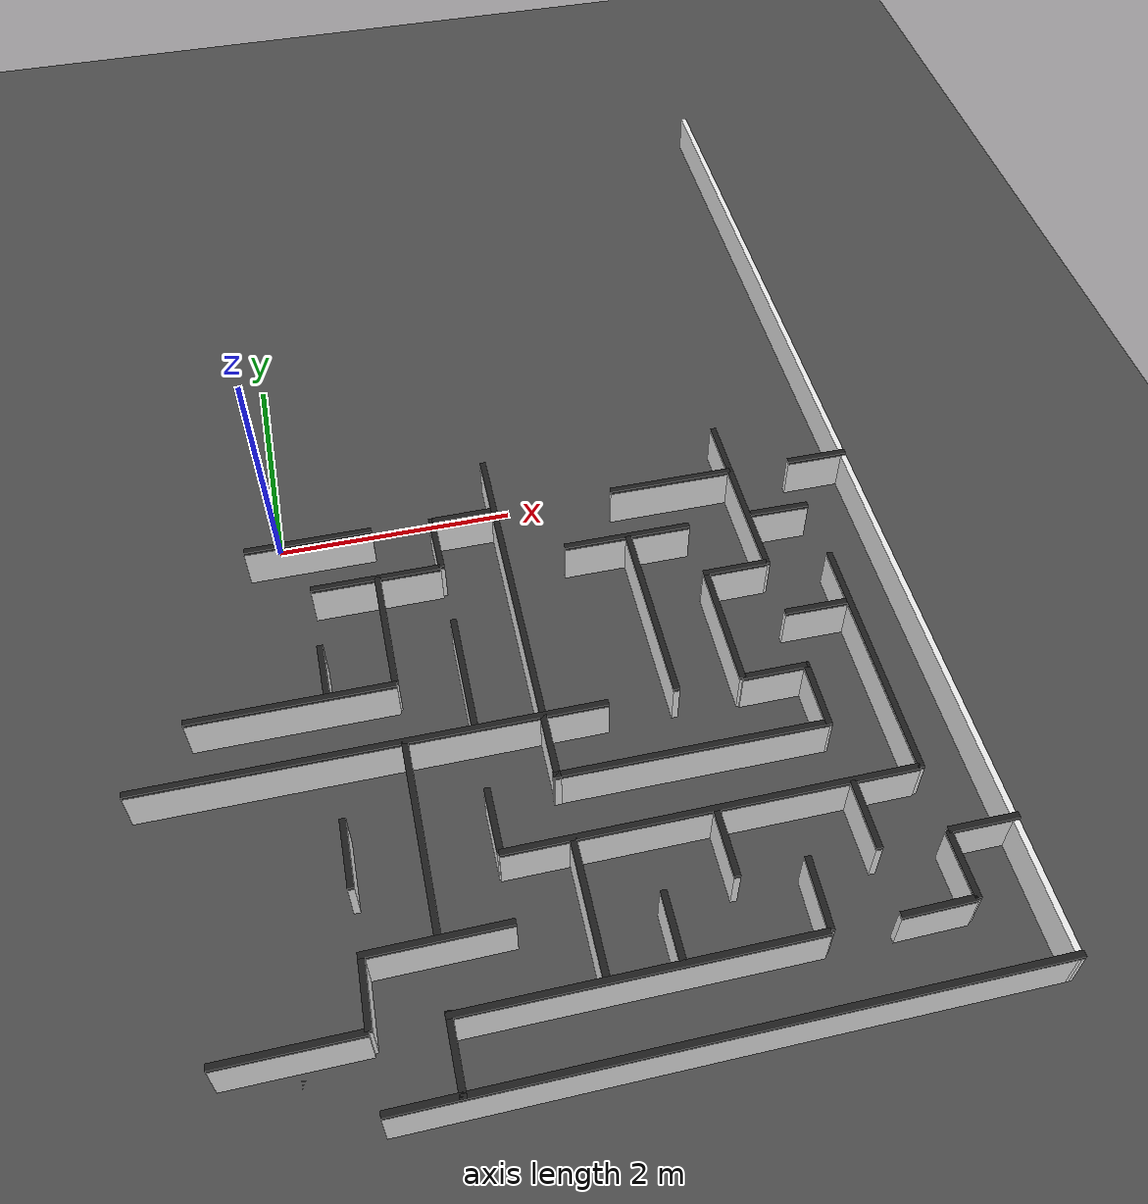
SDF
<sdf version="1.6">
 <world name="default">
  <model name="ground_plane">
   <static>1</static>
   <link name="link">
    <collision name="collision">
     <geometry><plane><normal>0 0 1</normal><size>100 100</size></plane></geometry>
     <surface><friction><ode><mu>100</mu><mu2>50</mu2></ode></friction></surface>
    </collision>
    <visual name="visual">
     <cast_shadows>0</cast_shadows>
     <geometry><plane><normal>0 0 1</normal><size>100 100</size></plane></geometry>
     <material>
      <script><uri>file://media/materials/scripts/gazebo.material</uri><name>Gazebo/Grey</name></script>
     </material>
    </visual>
   </link>
  </model>
  <model name="asphalt_white_plane">
   <static>1</static>
   <link name="link">
    <collision name="collision"><geometry><box><size>60 60 0.005</size></box></geometry></collision>
    <visual name="visual">
     <cast_shadows>0</cast_shadows>
     <geometry><box><size>60 60 0.005</size></box></geometry>
     <material>
      <script>
       <uri>model://asphalt_white_plane/materials/scripts</uri>
       <uri>model://asphalt_white_plane/materials/textures</uri>
       <name>vrc/asphalt_white</name>
      </script>
     </material>
    </visual>
   </link>
  </model>
  <model name="asphalt_red_plane">
   <static>1</static>
   <link name="link">
    <collision name="collision"><geometry><box><size>0.5 0.5 0.005</size></box></geometry></collision>
    <visual name="visual">
     <cast_shadows>0</cast_shadows>
     <geometry><box><size>0.5 0.5 0.005</size></box></geometry>
     <material>
      <script>
       <uri>model://asphalt_red_plane/materials/scripts</uri>
       <uri>model://asphalt_red_plane/materials/textures</uri>
       <name>vrc/asphalt_red</name>
      </script>
     </material>
    </visual>
   </link>
   <pose>0.020542 -4.76391 0 0 -0 0</pose>
  </model>
  <model name="ibomaze">
   <link name="Wall_100">
    <collision name="Wall_100_Collision">
     <geometry><box><size>1.55502 0.05 0.37</size></box></geometry>
     <pose>0 0 0.185 0 -0 0</pose>
    </collision>
    <visual name="Wall_100_Visual">
     <pose>0 0 0.185 0 -0 0</pose>
     <geometry><box><size>1.55502 0.05 0.37</size></box></geometry>
     <material>
      <script><uri>file://media/materials/scripts/gazebo.material</uri><name>Gazebo/White</name></script>
      <ambient>1 1 1 1</ambient>
     </material>
    </visual>
    <pose>0.79411 -3.12637 0 0 0 -1.56548</pose>
   </link>
   <link name="Wall_102">
    <collision name="Wall_102_Collision">
     <geometry><box><size>3.642 0.05 0.37</size></box></geometry>
     <pose>0 0 0.185 0 -0 0</pose>
    </collision>
    <visual name="Wall_102_Visual">
     <pose>0 0 0.185 0 -0 0</pose>
     <geometry><box><size>3.642 0.05 0.37</size></box></geometry>
     <material>
      <script><uri>file://media/materials/scripts/gazebo.material</uri><name>Gazebo/White</name></script>
      <ambient>1 1 1 1</ambient>
     </material>
    </visual>
    <pose>0.535666 -2.35016 0 0 -0 0</pose>
   </link>
   <link name="Wall_5">
    <collision name="Wall_5_Collision">
     <geometry><box><size>4.74 0.05 0.37</size></box></geometry>
     <pose>0 0 0.185 0 -0 0</pose>
    </collision>
    <visual name="Wall_5_Visual">
     <pose>0 0 0.185 0 -0 0</pose>
     <geometry><box><size>4.74 0.05 0.37</size></box></geometry>
     <material>
      <script><uri>file://media/materials/scripts/gazebo.material</uri><name>Gazebo/White</name></script>
      <ambient>1 1 1 1</ambient>
     </material>
    </visual>
    <pose>2.64358 -4.98246 0 0 -0 0</pose>
   </link>
   <link name="Wall_63">
    <collision name="Wall_63_Collision">
     <geometry><box><size>0.548182 0.05 0.37</size></box></geometry>
     <pose>0 0 0.185 0 -0 0</pose>
    </collision>
    <visual name="Wall_63_Visual">
     <pose>0 0 0.185 0 -0 0</pose>
     <geometry><box><size>0.548182 0.05 0.37</size></box></geometry>
     <material>
      <script><uri>file://media/materials/scripts/gazebo.material</uri><name>Gazebo/White</name></script>
      <ambient>1 1 1 1</ambient>
     </material>
    </visual>
    <pose>0.265989 -3.16255 0 0 0 -1.57317</pose>
   </link>
   <link name="Wall_67">
    <collision name="Wall_67_Collision">
     <geometry><box><size>1.044 0.05 0.37</size></box></geometry>
     <pose>0 0 0.185 0 -0 0</pose>
    </collision>
    <visual name="Wall_67_Visual">
     <pose>0 0 0.185 0 -0 0</pose>
     <geometry><box><size>1.044 0.05 0.37</size></box></geometry>
     <material>
      <script><uri>file://media/materials/scripts/gazebo.material</uri><name>Gazebo/White</name></script>
      <ambient>1 1 1 1</ambient>
     </material>
    </visual>
    <pose>-0.255505 -4.45141 0 0 -0 0</pose>
   </link>
   <link name="Wall_69">
    <collision name="Wall_69_Collision">
     <geometry><box><size>0.542044 0.05 0.37</size></box></geometry>
     <pose>0 0 0.185 0 -0 0</pose>
    </collision>
    <visual name="Wall_69_Visual">
     <pose>0 0 0.185 0 -0 0</pose>
     <geometry><box><size>0.542044 0.05 0.37</size></box></geometry>
     <material>
      <script><uri>file://media/materials/scripts/gazebo.material</uri><name>Gazebo/White</name></script>
      <ambient>1 1 1 1</ambient>
     </material>
    </visual>
    <pose>0.271551 -4.18049 0 0 0 -1.59101</pose>
   </link>
   <link name="Wall_7">
    <collision name="Wall_7_Collision">
     <geometry><box><size>10.0256 0.05 0.37</size></box></geometry>
     <pose>0 0 0.185 0 -0 0</pose>
    </collision>
    <visual name="Wall_7_Visual">
     <pose>0 0 0.185 0 -0 0</pose>
     <geometry><box><size>10.0256 0.05 0.37</size></box></geometry>
     <material>
      <script><uri>file://media/materials/scripts/gazebo.material</uri><name>Gazebo/White</name></script>
      <ambient>1 1 1 1</ambient>
     </material>
    </visual>
    <pose>4.98072 0.005333 0 0 -0 1.57237</pose>
   </link>
   <link name="Wall_71">
    <collision name="Wall_71_Collision">
     <geometry><box><size>1.08401 0.05 0.37</size></box></geometry>
     <pose>0 0 0.185 0 -0 0</pose>
    </collision>
    <visual name="Wall_71_Visual">
     <pose>0 0 0.185 0 -0 0</pose>
     <geometry><box><size>1.08401 0.05 0.37</size></box></geometry>
     <material>
      <script><uri>file://media/materials/scripts/gazebo.material</uri><name>Gazebo/White</name></script>
      <ambient>1 1 1 1</ambient>
     </material>
    </visual>
    <pose>0.793523 -3.92705 0 0 -0 0.004836</pose>
   </link>
   <link name="Wall_73">
    <collision name="Wall_73_Collision">
     <geometry><box><size>0.578838 0.05 0.37</size></box></geometry>
     <pose>0 0 0.185 0 -0 0</pose>
    </collision>
    <visual name="Wall_73_Visual">
     <pose>0 0 0.185 0 -0 0</pose>
     <geometry><box><size>0.578838 0.05 0.37</size></box></geometry>
     <material>
      <script><uri>file://media/materials/scripts/gazebo.material</uri><name>Gazebo/White</name></script>
      <ambient>1 1 1 1</ambient>
     </material>
    </visual>
    <pose>0.79086 -4.71706 0 0 -0 1.58154</pose>
   </link>
   <link name="Wall_737">
    <collision name="Wall_737_Collision">
     <geometry><box><size>1.078 0.05 0.37</size></box></geometry>
     <pose>0 0 0.185 0 -0 0</pose>
    </collision>
    <visual name="Wall_737_Visual">
     <pose>0 0 0.185 0 -0 0</pose>
     <geometry><box><size>1.078 0.05 0.37</size></box></geometry>
     <material>
      <script><uri>file://media/materials/scripts/gazebo.material</uri><name>Gazebo/White</name></script>
      <ambient>1 1 1 1</ambient>
     </material>
    </visual>
    <pose>2.8877 -0.779461 0 0 -0 0</pose>
   </link>
   <link name="Wall_739">
    <collision name="Wall_739_Collision">
     <geometry><box><size>1.576 0.05 0.37</size></box></geometry>
     <pose>0 0 0.185 0 -0 0</pose>
    </collision>
    <visual name="Wall_739_Visual">
     <pose>0 0 0.185 0 -0 0</pose>
     <geometry><box><size>1.576 0.05 0.37</size></box></geometry>
     <material>
      <script><uri>file://media/materials/scripts/gazebo.material</uri><name>Gazebo/White</name></script>
      <ambient>1 1 1 1</ambient>
     </material>
    </visual>
    <pose>2.89486 -1.56574 0 0 -0 1.5708</pose>
   </link>
   <link name="Wall_741">
    <collision name="Wall_741_Collision">
     <geometry><box><size>3.20927 0.05 0.37</size></box></geometry>
     <pose>0 0 0.185 0 -0 0</pose>
    </collision>
    <visual name="Wall_741_Visual">
     <pose>0 0 0.185 0 -0 0</pose>
     <geometry><box><size>3.20927 0.05 0.37</size></box></geometry>
     <material>
      <script><uri>file://media/materials/scripts/gazebo.material</uri><name>Gazebo/White</name></script>
      <ambient>1 1 1 1</ambient>
     </material>
    </visual>
    <pose>1.84647 -1.30025 0 0 0 -1.5717</pose>
   </link>
   <link name="Wall_746">
    <collision name="Wall_746_Collision">
     <geometry><box><size>1.01629 0.05 0.37</size></box></geometry>
     <pose>0 0 0.185 0 -0 0</pose>
    </collision>
    <visual name="Wall_746_Visual">
     <pose>0 0 0.185 0 -0 0</pose>
     <geometry><box><size>1.01629 0.05 0.37</size></box></geometry>
     <material>
      <script><uri>file://media/materials/scripts/gazebo.material</uri><name>Gazebo/White</name></script>
      <ambient>1 1 1 1</ambient>
     </material>
    </visual>
    <pose>1.32458 -1.82746 0 0 0 -1.5708</pose>
   </link>
   <link name="Wall_748">
    <collision name="Wall_748_Collision">
     <geometry><box><size>1.625 0.05 0.37</size></box></geometry>
     <pose>0 0 0.185 0 -0 0</pose>
    </collision>
    <visual name="Wall_748_Visual">
     <pose>0 0 0.185 0 -0 0</pose>
     <geometry><box><size>1.625 0.05 0.37</size></box></geometry>
     <material>
      <script><uri>file://media/materials/scripts/gazebo.material</uri><name>Gazebo/White</name></script>
      <ambient>1 1 1 1</ambient>
     </material>
    </visual>
    <pose>-0.011661 -1.82796 0 0 -0 0</pose>
   </link>
   <link name="Wall_75">
    <collision name="Wall_75_Collision">
     <geometry><box><size>2.644 0.05 0.37</size></box></geometry>
     <pose>0 0 0.185 0 -0 0</pose>
    </collision>
    <visual name="Wall_75_Visual">
     <pose>0 0 0.185 0 -0 0</pose>
     <geometry><box><size>2.644 0.05 0.37</size></box></geometry>
     <material>
      <script><uri>file://media/materials/scripts/gazebo.material</uri><name>Gazebo/White</name></script>
      <ambient>1 1 1 1</ambient>
     </material>
    </visual>
    <pose>2.08502 -4.46021 0 0 -0 0</pose>
   </link>
   <link name="Wall_750">
    <collision name="Wall_750_Collision">
     <geometry><box><size>0.479042 0.05 0.37</size></box></geometry>
     <pose>0 0 0.185 0 -0 0</pose>
    </collision>
    <visual name="Wall_750_Visual">
     <pose>0 0 0.185 0 -0 0</pose>
     <geometry><box><size>0.479042 0.05 0.37</size></box></geometry>
     <material>
      <script><uri>file://media/materials/scripts/gazebo.material</uri><name>Gazebo/White</name></script>
      <ambient>1 1 1 1</ambient>
     </material>
    </visual>
    <pose>0.261862 -1.5804 0 0 0 -1.55681</pose>
   </link>
   <link name="Wall_752">
    <collision name="Wall_752_Collision">
     <geometry><box><size>1.06202 0.05 0.37</size></box></geometry>
     <pose>0 0 0.185 0 -0 0</pose>
    </collision>
    <visual name="Wall_752_Visual">
     <pose>0 0 0.185 0 -0 0</pose>
     <geometry><box><size>1.06202 0.05 0.37</size></box></geometry>
     <material>
      <script><uri>file://media/materials/scripts/gazebo.material</uri><name>Gazebo/White</name></script>
      <ambient>1 1 1 1</ambient>
     </material>
    </visual>
    <pose>0.787862 -1.28918 0 0 0 -1.56487</pose>
   </link>
   <link name="Wall_754">
    <collision name="Wall_754_Collision">
     <geometry><box><size>1.06778 0.05 0.37</size></box></geometry>
     <pose>0 0 0.185 0 -0 0</pose>
    </collision>
    <visual name="Wall_754_Visual">
     <pose>0 0 0.185 0 -0 0</pose>
     <geometry><box><size>1.06778 0.05 0.37</size></box></geometry>
     <material>
      <script><uri>file://media/materials/scripts/gazebo.material</uri><name>Gazebo/White</name></script>
      <ambient>1 1 1 1</ambient>
     </material>
    </visual>
    <pose>0.773579 -0.766461 0 0 -0 0</pose>
   </link>
   <link name="Wall_758">
    <collision name="Wall_758_Collision">
     <geometry><box><size>0.530705 0.05 0.37</size></box></geometry>
     <pose>0 0 0.185 0 -0 0</pose>
    </collision>
    <visual name="Wall_758_Visual">
     <pose>0 0 0.185 0 -0 0</pose>
     <geometry><box><size>0.530705 0.05 0.37</size></box></geometry>
     <material>
      <script><uri>file://media/materials/scripts/gazebo.material</uri><name>Gazebo/White</name></script>
      <ambient>1 1 1 1</ambient>
     </material>
    </visual>
    <pose>1.31386 -0.502961 0 0 0 -1.55832</pose>
   </link>
   <link name="Wall_760">
    <collision name="Wall_760_Collision">
     <geometry><box><size>0.542 0.05 0.37</size></box></geometry>
     <pose>0 0 0.185 0 -0 0</pose>
    </collision>
    <visual name="Wall_760_Visual">
     <pose>0 0 0.185 0 -0 0</pose>
     <geometry><box><size>0.542 0.05 0.37</size></box></geometry>
     <material>
      <script><uri>file://media/materials/scripts/gazebo.material</uri><name>Gazebo/White</name></script>
      <ambient>1 1 1 1</ambient>
     </material>
    </visual>
    <pose>1.58609 -0.255677 0 0 -0 3.14159</pose>
   </link>
   <link name="Wall_77">
    <collision name="Wall_77_Collision">
     <geometry><box><size>0.557148 0.05 0.37</size></box></geometry>
     <pose>0 0 0.185 0 -0 0</pose>
    </collision>
    <visual name="Wall_77_Visual">
     <pose>0 0 0.185 0 -0 0</pose>
     <geometry><box><size>0.557148 0.05 0.37</size></box></geometry>
     <material>
      <script><uri>file://media/materials/scripts/gazebo.material</uri><name>Gazebo/White</name></script>
      <ambient>1 1 1 1</ambient>
     </material>
    </visual>
    <pose>3.41908 -4.17696 0 0 0 -1.60037</pose>
   </link>
   <link name="Wall_79">
    <collision name="Wall_79_Collision">
     <geometry><box><size>0.564609 0.05 0.37</size></box></geometry>
     <pose>0 0 0.185 0 -0 0</pose>
    </collision>
    <visual name="Wall_79_Visual">
     <pose>0 0 0.185 0 -0 0</pose>
     <geometry><box><size>0.564609 0.05 0.37</size></box></geometry>
     <material>
      <script><uri>file://media/materials/scripts/gazebo.material</uri><name>Gazebo/White</name></script>
      <ambient>1 1 1 1</ambient>
     </material>
    </visual>
    <pose>4.19008 -4.45346 0 0 -0 0.01165</pose>
   </link>
   <link name="Wall_81">
    <collision name="Wall_81_Collision">
     <geometry><box><size>0.524038 0.05 0.37</size></box></geometry>
     <pose>0 0 0.185 0 -0 0</pose>
    </collision>
    <visual name="Wall_81_Visual">
     <pose>0 0 0.185 0 -0 0</pose>
     <geometry><box><size>0.524038 0.05 0.37</size></box></geometry>
     <material>
      <script><uri>file://media/materials/scripts/gazebo.material</uri><name>Gazebo/White</name></script>
      <ambient>1 1 1 1</ambient>
     </material>
    </visual>
    <pose>4.47286 -4.19633 0 0 0 -1.55814</pose>
   </link>
   <link name="Wall_814">
    <collision name="Wall_814_Collision">
     <geometry><box><size>1.06733 0.05 0.37</size></box></geometry>
     <pose>0 0 0.185 0 -0 0</pose>
    </collision>
    <visual name="Wall_814_Visual">
     <pose>0 0 0.185 0 -0 0</pose>
     <geometry><box><size>1.06733 0.05 0.37</size></box></geometry>
     <material>
      <script><uri>file://media/materials/scripts/gazebo.material</uri><name>Gazebo/White</name></script>
      <ambient>1 1 1 1</ambient>
     </material>
    </visual>
    <pose>0.267079 -0.246461 0 0 -0 3.14159</pose>
   </link>
   <link name="Wall_83">
    <collision name="Wall_83_Collision">
     <geometry><box><size>0.547683 0.05 0.37</size></box></geometry>
     <pose>0 0 0.185 0 -0 0</pose>
    </collision>
    <visual name="Wall_83_Visual">
     <pose>0 0 0.185 0 -0 0</pose>
     <geometry><box><size>0.547683 0.05 0.37</size></box></geometry>
     <material>
      <script><uri>file://media/materials/scripts/gazebo.material</uri><name>Gazebo/White</name></script>
      <ambient>1 1 1 1</ambient>
     </material>
    </visual>
    <pose>4.74158 -3.92446 0 0 -0 3.14159</pose>
   </link>
   <link name="Wall_85">
    <collision name="Wall_85_Collision">
     <geometry><box><size>3.15401 0.05 0.37</size></box></geometry>
     <pose>0 0 0.185 0 -0 0</pose>
    </collision>
    <visual name="Wall_85_Visual">
     <pose>0 0 0.185 0 -0 0</pose>
     <geometry><box><size>3.15401 0.05 0.37</size></box></geometry>
     <material>
      <script><uri>file://media/materials/scripts/gazebo.material</uri><name>Gazebo/White</name></script>
      <ambient>1 1 1 1</ambient>
     </material>
    </visual>
    <pose>2.88901 -3.39546 0 0 -0 0.001933</pose>
   </link>
   <link name="Wall_864">
    <collision name="Wall_864_Collision">
     <geometry><box><size>2.14668 0.05 0.37</size></box></geometry>
     <pose>0 0 0.185 0 -0 0</pose>
    </collision>
    <visual name="Wall_864_Visual">
     <pose>0 0 0.185 0 -0 0</pose>
     <geometry><box><size>2.14668 0.05 0.37</size></box></geometry>
     <material>
      <script><uri>file://media/materials/scripts/gazebo.material</uri><name>Gazebo/White</name></script>
      <ambient>1 1 1 1</ambient>
     </material>
    </visual>
    <pose>2.88762 -2.88094 0 0 0 -0.003711</pose>
   </link>
   <link name="Wall_866">
    <collision name="Wall_866_Collision">
     <geometry><box><size>0.544 0.05 0.37</size></box></geometry>
     <pose>0 0 0.185 0 -0 0</pose>
    </collision>
    <visual name="Wall_866_Visual">
     <pose>0 0 0.185 0 -0 0</pose>
     <geometry><box><size>0.544 0.05 0.37</size></box></geometry>
     <material>
      <script><uri>file://media/materials/scripts/gazebo.material</uri><name>Gazebo/White</name></script>
      <ambient>1 1 1 1</ambient>
     </material>
    </visual>
    <pose>3.69175 -2.35223 0 0 0 -0.000936</pose>
   </link>
   <link name="Wall_868">
    <collision name="Wall_868_Collision">
     <geometry><box><size>0.582371 0.05 0.37</size></box></geometry>
     <pose>0 0 0.185 0 -0 0</pose>
    </collision>
    <visual name="Wall_868_Visual">
     <pose>0 0 0.185 0 -0 0</pose>
     <geometry><box><size>0.582371 0.05 0.37</size></box></geometry>
     <material>
      <script><uri>file://media/materials/scripts/gazebo.material</uri><name>Gazebo/White</name></script>
      <ambient>1 1 1 1</ambient>
     </material>
    </visual>
    <pose>3.93722 -2.61864 0 0 -0 1.5657</pose>
   </link>
   <link name="Wall_87">
    <collision name="Wall_87_Collision">
     <geometry><box><size>0.559 0.05 0.37</size></box></geometry>
     <pose>0 0 0.185 0 -0 0</pose>
    </collision>
    <visual name="Wall_87_Visual">
     <pose>0 0 0.185 0 -0 0</pose>
     <geometry><box><size>0.559 0.05 0.37</size></box></geometry>
     <material>
      <script><uri>file://media/materials/scripts/gazebo.material</uri><name>Gazebo/White</name></script>
      <ambient>1 1 1 1</ambient>
     </material>
    </visual>
    <pose>3.94443 -3.67581 0 0 -0 1.5708</pose>
   </link>
   <link name="Wall_870">
    <collision name="Wall_870_Collision">
     <geometry><box><size>1.08033 0.05 0.37</size></box></geometry>
     <pose>0 0 0.185 0 -0 0</pose>
    </collision>
    <visual name="Wall_870_Visual">
     <pose>0 0 0.185 0 -0 0</pose>
     <geometry><box><size>1.08033 0.05 0.37</size></box></geometry>
     <material>
      <script><uri>file://media/materials/scripts/gazebo.material</uri><name>Gazebo/White</name></script>
      <ambient>1 1 1 1</ambient>
     </material>
    </visual>
    <pose>3.42405 -1.82085 0 0 0 -1.57559</pose>
   </link>
   <link name="Wall_872">
    <collision name="Wall_872_Collision">
     <geometry><box><size>0.545001 0.05 0.37</size></box></geometry>
     <pose>0 0 0.185 0 -0 0</pose>
    </collision>
    <visual name="Wall_872_Visual">
     <pose>0 0 0.185 0 -0 0</pose>
     <geometry><box><size>0.545001 0.05 0.37</size></box></geometry>
     <material>
      <script><uri>file://media/materials/scripts/gazebo.material</uri><name>Gazebo/White</name></script>
      <ambient>1 1 1 1</ambient>
     </material>
    </visual>
    <pose>3.67402 -1.30519 0 0 -0 0.00202</pose>
   </link>
   <link name="Wall_874">
    <collision name="Wall_874_Collision">
     <geometry><box><size>1.58502 0.05 0.37</size></box></geometry>
     <pose>0 0 0.185 0 -0 0</pose>
    </collision>
    <visual name="Wall_874_Visual">
     <pose>0 0 0.185 0 -0 0</pose>
     <geometry><box><size>1.58502 0.05 0.37</size></box></geometry>
     <material>
      <script><uri>file://media/materials/scripts/gazebo.material</uri><name>Gazebo/White</name></script>
      <ambient>1 1 1 1</ambient>
     </material>
    </visual>
    <pose>3.94269 -0.529905 0 0 0 -1.56559</pose>
   </link>
   <link name="Wall_876">
    <collision name="Wall_876_Collision">
     <geometry><box><size>0.507428 0.05 0.37</size></box></geometry>
     <pose>0 0 0.185 0 -0 0</pose>
    </collision>
    <visual name="Wall_876_Visual">
     <pose>0 0 0.185 0 -0 0</pose>
     <geometry><box><size>0.507428 0.05 0.37</size></box></geometry>
     <material>
      <script><uri>file://media/materials/scripts/gazebo.material</uri><name>Gazebo/White</name></script>
      <ambient>1 1 1 1</ambient>
     </material>
    </visual>
    <pose>4.22408 -0.772961 0 0 0 -0.01094</pose>
   </link>
   <link name="Wall_878">
    <collision name="Wall_878_Collision">
     <geometry><box><size>1.07627 0.05 0.37</size></box></geometry>
     <pose>0 0 0.185 0 -0 0</pose>
    </collision>
    <visual name="Wall_878_Visual">
     <pose>0 0 0.185 0 -0 0</pose>
     <geometry><box><size>1.07627 0.05 0.37</size></box></geometry>
     <material>
      <script><uri>file://media/materials/scripts/gazebo.material</uri><name>Gazebo/White</name></script>
      <ambient>1 1 1 1</ambient>
     </material>
    </visual>
    <pose>3.40458 -0.256461 0 0 -0 0</pose>
   </link>
   <link name="Wall_888">
    <collision name="Wall_888_Collision">
     <geometry><box><size>2.08101 0.05 0.37</size></box></geometry>
     <pose>0 0 0.185 0 -0 0</pose>
    </collision>
    <visual name="Wall_888_Visual">
     <pose>0 0 0.185 0 -0 0</pose>
     <geometry><box><size>2.08101 0.05 0.37</size></box></geometry>
     <material>
      <script><uri>file://media/materials/scripts/gazebo.material</uri><name>Gazebo/White</name></script>
      <ambient>1 1 1 1</ambient>
     </material>
    </visual>
    <pose>4.47863 -2.36654 0 0 0 -1.57375</pose>
   </link>
   <link name="Wall_89">
    <collision name="Wall_89_Collision">
     <geometry><box><size>0.524 0.05 0.37</size></box></geometry>
     <pose>0 0 0.185 0 -0 0</pose>
    </collision>
    <visual name="Wall_89_Visual">
     <pose>0 0 0.185 0 -0 0</pose>
     <geometry><box><size>0.524 0.05 0.37</size></box></geometry>
     <material>
      <script><uri>file://media/materials/scripts/gazebo.material</uri><name>Gazebo/White</name></script>
      <ambient>1 1 1 1</ambient>
     </material>
    </visual>
    <pose>2.90358 -3.67603 0 0 -0 1.5708</pose>
   </link>
   <link name="Wall_890">
    <collision name="Wall_890_Collision">
     <geometry><box><size>0.547016 0.05 0.37</size></box></geometry>
     <pose>0 0 0.185 0 -0 0</pose>
    </collision>
    <visual name="Wall_890_Visual">
     <pose>0 0 0.185 0 -0 0</pose>
     <geometry><box><size>0.547016 0.05 0.37</size></box></geometry>
     <material>
      <script><uri>file://media/materials/scripts/gazebo.material</uri><name>Gazebo/White</name></script>
      <ambient>1 1 1 1</ambient>
     </material>
    </visual>
    <pose>4.20915 -1.82992 0 0 0 -0.008048</pose>
   </link>
   <link name="Wall_892">
    <collision name="Wall_892_Collision">
     <geometry><box><size>0.528 0.05 0.37</size></box></geometry>
     <pose>0 0 0.185 0 -0 0</pose>
    </collision>
    <visual name="Wall_892_Visual">
     <pose>0 0 0.185 0 -0 0</pose>
     <geometry><box><size>0.528 0.05 0.37</size></box></geometry>
     <material>
      <script><uri>file://media/materials/scripts/gazebo.material</uri><name>Gazebo/White</name></script>
      <ambient>1 1 1 1</ambient>
     </material>
    </visual>
    <pose>4.73539 -0.259461 0 0 -0 0</pose>
   </link>
   <link name="Wall_894">
    <collision name="Wall_894_Collision">
     <geometry><box><size>0.532026 0.05 0.37</size></box></geometry>
     <pose>0 0 0.185 0 -0 0</pose>
    </collision>
    <visual name="Wall_894_Visual">
     <pose>0 0 0.185 0 -0 0</pose>
     <geometry><box><size>0.532026 0.05 0.37</size></box></geometry>
     <material>
      <script><uri>file://media/materials/scripts/gazebo.material</uri><name>Gazebo/White</name></script>
      <ambient>1 1 1 1</ambient>
     </material>
    </visual>
    <pose>1.32266 -3.13835 0 0 0 -1.56042</pose>
   </link>
   <link name="Wall_93">
    <collision name="Wall_93_Collision">
     <geometry><box><size>0.518935 0.05 0.37</size></box></geometry>
     <pose>0 0 0.185 0 -0 0</pose>
    </collision>
    <visual name="Wall_93_Visual">
     <pose>0 0 0.185 0 -0 0</pose>
     <geometry><box><size>0.518935 0.05 0.37</size></box></geometry>
     <material>
      <script><uri>file://media/materials/scripts/gazebo.material</uri><name>Gazebo/White</name></script>
      <ambient>1 1 1 1</ambient>
     </material>
    </visual>
    <pose>2.37158 -4.18196 0 0 0 -1.5708</pose>
   </link>
   <link name="Wall_98">
    <collision name="Wall_98_Collision">
     <geometry><box><size>1.05 0.05 0.37</size></box></geometry>
     <pose>0 0 0.185 0 -0 0</pose>
    </collision>
    <visual name="Wall_98_Visual">
     <pose>0 0 0.185 0 -0 0</pose>
     <geometry><box><size>1.05 0.05 0.37</size></box></geometry>
     <material>
      <script><uri>file://media/materials/scripts/gazebo.material</uri><name>Gazebo/White</name></script>
      <ambient>1 1 1 1</ambient>
     </material>
    </visual>
    <pose>1.84638 -3.93256 0 0 0 -1.5708</pose>
   </link>
   <static>1</static>
  </model>
  <model name="ibomaze_5">
   <pose>0 0 0.37 0 -0 0</pose>
   <link name="Wall_100">
    <collision name="Wall_100_Collision">
     <geometry><box><size>1.55502 0.05 0.03</size></box></geometry>
     <pose>0 0 0.015 0 -0 0</pose>
    </collision>
    <visual name="Wall_100_Visual">
     <pose>0 0 0.015 0 -0 0</pose>
     <geometry><box><size>1.55502 0.05 0.03</size></box></geometry>
     <material>
      <script><uri>file://media/materials/scripts/gazebo.material</uri><name>Gazebo/Black</name></script>
      <ambient>0 0 0 1</ambient>
     </material>
    </visual>
    <pose>0.79411 -3.12637 0 0 0 -1.56548</pose>
   </link>
   <link name="Wall_102">
    <collision name="Wall_102_Collision">
     <geometry><box><size>3.642 0.05 0.03</size></box></geometry>
     <pose>0 0 0.015 0 -0 0</pose>
    </collision>
    <visual name="Wall_102_Visual">
     <pose>0 0 0.015 0 -0 0</pose>
     <geometry><box><size>3.642 0.05 0.03</size></box></geometry>
     <material>
      <script><uri>file://media/materials/scripts/gazebo.material</uri><name>Gazebo/Black</name></script>
      <ambient>0 0 0 1</ambient>
     </material>
    </visual>
    <pose>0.535666 -2.35016 0 0 -0 0</pose>
   </link>
   <link name="Wall_5">
    <collision name="Wall_5_Collision">
     <geometry><box><size>4.74 0.05 0.03</size></box></geometry>
     <pose>0 0 0.015 0 -0 0</pose>
    </collision>
    <visual name="Wall_5_Visual">
     <pose>0 0 0.015 0 -0 0</pose>
     <geometry><box><size>4.74 0.05 0.03</size></box></geometry>
     <material>
      <script><uri>file://media/materials/scripts/gazebo.material</uri><name>Gazebo/Black</name></script>
      <ambient>0 0 0 1</ambient>
     </material>
    </visual>
    <pose>2.64358 -4.98246 0 0 -0 0</pose>
   </link>
   <link name="Wall_63">
    <collision name="Wall_63_Collision">
     <geometry><box><size>0.548182 0.05 0.03</size></box></geometry>
     <pose>0 0 0.015 0 -0 0</pose>
    </collision>
    <visual name="Wall_63_Visual">
     <pose>0 0 0.015 0 -0 0</pose>
     <geometry><box><size>0.548182 0.05 0.03</size></box></geometry>
     <material>
      <script><uri>file://media/materials/scripts/gazebo.material</uri><name>Gazebo/Black</name></script>
      <ambient>0 0 0 1</ambient>
     </material>
    </visual>
    <pose>0.265989 -3.16255 0 0 0 -1.57317</pose>
   </link>
   <link name="Wall_67">
    <collision name="Wall_67_Collision">
     <geometry><box><size>1.044 0.05 0.03</size></box></geometry>
     <pose>0 0 0.015 0 -0 0</pose>
    </collision>
    <visual name="Wall_67_Visual">
     <pose>0 0 0.015 0 -0 0</pose>
     <geometry><box><size>1.044 0.05 0.03</size></box></geometry>
     <material>
      <script><uri>file://media/materials/scripts/gazebo.material</uri><name>Gazebo/Black</name></script>
      <ambient>0 0 0 1</ambient>
     </material>
    </visual>
    <pose>-0.255505 -4.45141 0 0 -0 0</pose>
   </link>
   <link name="Wall_69">
    <collision name="Wall_69_Collision">
     <geometry><box><size>0.542044 0.05 0.03</size></box></geometry>
     <pose>0 0 0.015 0 -0 0</pose>
    </collision>
    <visual name="Wall_69_Visual">
     <pose>0 0 0.015 0 -0 0</pose>
     <geometry><box><size>0.542044 0.05 0.03</size></box></geometry>
     <material>
      <script><uri>file://media/materials/scripts/gazebo.material</uri><name>Gazebo/Black</name></script>
      <ambient>0 0 0 1</ambient>
     </material>
    </visual>
    <pose>0.271551 -4.18049 0 0 0 -1.59101</pose>
   </link>
   <link name="Wall_71">
    <collision name="Wall_71_Collision">
     <geometry><box><size>1.08401 0.05 0.03</size></box></geometry>
     <pose>0 0 0.015 0 -0 0</pose>
    </collision>
    <visual name="Wall_71_Visual">
     <pose>0 0 0.015 0 -0 0</pose>
     <geometry><box><size>1.08401 0.05 0.03</size></box></geometry>
     <material>
      <script><uri>file://media/materials/scripts/gazebo.material</uri><name>Gazebo/Black</name></script>
      <ambient>0 0 0 1</ambient>
     </material>
    </visual>
    <pose>0.793523 -3.92705 0 0 -0 0.004836</pose>
   </link>
   <link name="Wall_73">
    <collision name="Wall_73_Collision">
     <geometry><box><size>0.578838 0.05 0.03</size></box></geometry>
     <pose>0 0 0.015 0 -0 0</pose>
    </collision>
    <visual name="Wall_73_Visual">
     <pose>0 0 0.015 0 -0 0</pose>
     <geometry><box><size>0.578838 0.05 0.03</size></box></geometry>
     <material>
      <script><uri>file://media/materials/scripts/gazebo.material</uri><name>Gazebo/Black</name></script>
      <ambient>0 0 0 1</ambient>
     </material>
    </visual>
    <pose>0.79086 -4.71706 0 0 -0 1.58154</pose>
   </link>
   <link name="Wall_737">
    <collision name="Wall_737_Collision">
     <geometry><box><size>1.078 0.05 0.03</size></box></geometry>
     <pose>0 0 0.015 0 -0 0</pose>
    </collision>
    <visual name="Wall_737_Visual">
     <pose>0 0 0.015 0 -0 0</pose>
     <geometry><box><size>1.078 0.05 0.03</size></box></geometry>
     <material>
      <script><uri>file://media/materials/scripts/gazebo.material</uri><name>Gazebo/Black</name></script>
      <ambient>0 0 0 1</ambient>
     </material>
    </visual>
    <pose>2.8877 -0.779461 0 0 -0 0</pose>
   </link>
   <link name="Wall_739">
    <collision name="Wall_739_Collision">
     <geometry><box><size>1.576 0.05 0.03</size></box></geometry>
     <pose>0 0 0.015 0 -0 0</pose>
    </collision>
    <visual name="Wall_739_Visual">
     <pose>0 0 0.015 0 -0 0</pose>
     <geometry><box><size>1.576 0.05 0.03</size></box></geometry>
     <material>
      <script><uri>file://media/materials/scripts/gazebo.material</uri><name>Gazebo/Black</name></script>
      <ambient>0 0 0 1</ambient>
     </material>
    </visual>
    <pose>2.89486 -1.56574 0 0 -0 1.5708</pose>
   </link>
   <link name="Wall_741">
    <collision name="Wall_741_Collision">
     <geometry><box><size>3.20927 0.05 0.03</size></box></geometry>
     <pose>0 0 0.015 0 -0 0</pose>
    </collision>
    <visual name="Wall_741_Visual">
     <pose>0 0 0.015 0 -0 0</pose>
     <geometry><box><size>3.20927 0.05 0.03</size></box></geometry>
     <material>
      <script><uri>file://media/materials/scripts/gazebo.material</uri><name>Gazebo/Black</name></script>
      <ambient>0 0 0 1</ambient>
     </material>
    </visual>
    <pose>1.84647 -1.30025 0 0 0 -1.5717</pose>
   </link>
   <link name="Wall_746">
    <collision name="Wall_746_Collision">
     <geometry><box><size>1.01629 0.05 0.03</size></box></geometry>
     <pose>0 0 0.015 0 -0 0</pose>
    </collision>
    <visual name="Wall_746_Visual">
     <pose>0 0 0.015 0 -0 0</pose>
     <geometry><box><size>1.01629 0.05 0.03</size></box></geometry>
     <material>
      <script><uri>file://media/materials/scripts/gazebo.material</uri><name>Gazebo/Black</name></script>
      <ambient>0 0 0 1</ambient>
     </material>
    </visual>
    <pose>1.32458 -1.82746 0 0 0 -1.5708</pose>
   </link>
   <link name="Wall_748">
    <collision name="Wall_748_Collision">
     <geometry><box><size>1.625 0.05 0.03</size></box></geometry>
     <pose>0 0 0.015 0 -0 0</pose>
    </collision>
    <visual name="Wall_748_Visual">
     <pose>0 0 0.015 0 -0 0</pose>
     <geometry><box><size>1.625 0.05 0.03</size></box></geometry>
     <material>
      <script><uri>file://media/materials/scripts/gazebo.material</uri><name>Gazebo/Black</name></script>
      <ambient>0 0 0 1</ambient>
     </material>
    </visual>
    <pose>-0.011661 -1.82796 0 0 -0 0</pose>
   </link>
   <link name="Wall_75">
    <collision name="Wall_75_Collision">
     <geometry><box><size>2.644 0.05 0.03</size></box></geometry>
     <pose>0 0 0.015 0 -0 0</pose>
    </collision>
    <visual name="Wall_75_Visual">
     <pose>0 0 0.015 0 -0 0</pose>
     <geometry><box><size>2.644 0.05 0.03</size></box></geometry>
     <material>
      <script><uri>file://media/materials/scripts/gazebo.material</uri><name>Gazebo/Black</name></script>
      <ambient>0 0 0 1</ambient>
     </material>
    </visual>
    <pose>2.08502 -4.46021 0 0 -0 0</pose>
   </link>
   <link name="Wall_750">
    <collision name="Wall_750_Collision">
     <geometry><box><size>0.479042 0.05 0.03</size></box></geometry>
     <pose>0 0 0.015 0 -0 0</pose>
    </collision>
    <visual name="Wall_750_Visual">
     <pose>0 0 0.015 0 -0 0</pose>
     <geometry><box><size>0.479042 0.05 0.03</size></box></geometry>
     <material>
      <script><uri>file://media/materials/scripts/gazebo.material</uri><name>Gazebo/Black</name></script>
      <ambient>0 0 0 1</ambient>
     </material>
    </visual>
    <pose>0.261862 -1.5804 0 0 0 -1.55681</pose>
   </link>
   <link name="Wall_752">
    <collision name="Wall_752_Collision">
     <geometry><box><size>1.06202 0.05 0.03</size></box></geometry>
     <pose>0 0 0.015 0 -0 0</pose>
    </collision>
    <visual name="Wall_752_Visual">
     <pose>0 0 0.015 0 -0 0</pose>
     <geometry><box><size>1.06202 0.05 0.03</size></box></geometry>
     <material>
      <script><uri>file://media/materials/scripts/gazebo.material</uri><name>Gazebo/Black</name></script>
      <ambient>0 0 0 1</ambient>
     </material>
    </visual>
    <pose>0.787862 -1.28918 0 0 0 -1.56487</pose>
   </link>
   <link name="Wall_754">
    <collision name="Wall_754_Collision">
     <geometry><box><size>1.06778 0.05 0.03</size></box></geometry>
     <pose>0 0 0.015 0 -0 0</pose>
    </collision>
    <visual name="Wall_754_Visual">
     <pose>0 0 0.015 0 -0 0</pose>
     <geometry><box><size>1.06778 0.05 0.03</size></box></geometry>
     <material>
      <script><uri>file://media/materials/scripts/gazebo.material</uri><name>Gazebo/Black</name></script>
      <ambient>0 0 0 1</ambient>
     </material>
    </visual>
    <pose>0.773579 -0.766461 0 0 -0 0</pose>
   </link>
   <link name="Wall_758">
    <collision name="Wall_758_Collision">
     <geometry><box><size>0.530705 0.05 0.03</size></box></geometry>
     <pose>0 0 0.015 0 -0 0</pose>
    </collision>
    <visual name="Wall_758_Visual">
     <pose>0 0 0.015 0 -0 0</pose>
     <geometry><box><size>0.530705 0.05 0.03</size></box></geometry>
     <material>
      <script><uri>file://media/materials/scripts/gazebo.material</uri><name>Gazebo/Black</name></script>
      <ambient>0 0 0 1</ambient>
     </material>
    </visual>
    <pose>1.31386 -0.502961 0 0 0 -1.55832</pose>
   </link>
   <link name="Wall_760">
    <collision name="Wall_760_Collision">
     <geometry><box><size>0.542 0.05 0.03</size></box></geometry>
     <pose>0 0 0.015 0 -0 0</pose>
    </collision>
    <visual name="Wall_760_Visual">
     <pose>0 0 0.015 0 -0 0</pose>
     <geometry><box><size>0.542 0.05 0.03</size></box></geometry>
     <material>
      <script><uri>file://media/materials/scripts/gazebo.material</uri><name>Gazebo/Black</name></script>
      <ambient>0 0 0 1</ambient>
     </material>
    </visual>
    <pose>1.58609 -0.255677 0 0 -0 3.14159</pose>
   </link>
   <link name="Wall_77">
    <collision name="Wall_77_Collision">
     <geometry><box><size>0.557148 0.05 0.03</size></box></geometry>
     <pose>0 0 0.015 0 -0 0</pose>
    </collision>
    <visual name="Wall_77_Visual">
     <pose>0 0 0.015 0 -0 0</pose>
     <geometry><box><size>0.557148 0.05 0.03</size></box></geometry>
     <material>
      <script><uri>file://media/materials/scripts/gazebo.material</uri><name>Gazebo/Black</name></script>
      <ambient>0 0 0 1</ambient>
     </material>
    </visual>
    <pose>3.41908 -4.17696 0 0 0 -1.60037</pose>
   </link>
   <link name="Wall_79">
    <collision name="Wall_79_Collision">
     <geometry><box><size>0.564609 0.05 0.03</size></box></geometry>
     <pose>0 0 0.015 0 -0 0</pose>
    </collision>
    <visual name="Wall_79_Visual">
     <pose>0 0 0.015 0 -0 0</pose>
     <geometry><box><size>0.564609 0.05 0.03</size></box></geometry>
     <material>
      <script><uri>file://media/materials/scripts/gazebo.material</uri><name>Gazebo/Black</name></script>
      <ambient>0 0 0 1</ambient>
     </material>
    </visual>
    <pose>4.19008 -4.45346 0 0 -0 0.01165</pose>
   </link>
   <link name="Wall_81">
    <collision name="Wall_81_Collision">
     <geometry><box><size>0.524038 0.05 0.03</size></box></geometry>
     <pose>0 0 0.015 0 -0 0</pose>
    </collision>
    <visual name="Wall_81_Visual">
     <pose>0 0 0.015 0 -0 0</pose>
     <geometry><box><size>0.524038 0.05 0.03</size></box></geometry>
     <material>
      <script><uri>file://media/materials/scripts/gazebo.material</uri><name>Gazebo/Black</name></script>
      <ambient>0 0 0 1</ambient>
     </material>
    </visual>
    <pose>4.47286 -4.19633 0 0 0 -1.55814</pose>
   </link>
   <link name="Wall_814">
    <collision name="Wall_814_Collision">
     <geometry><box><size>1.06733 0.05 0.03</size></box></geometry>
     <pose>0 0 0.015 0 -0 0</pose>
    </collision>
    <visual name="Wall_814_Visual">
     <pose>0 0 0.015 0 -0 0</pose>
     <geometry><box><size>1.06733 0.05 0.03</size></box></geometry>
     <material>
      <script><uri>file://media/materials/scripts/gazebo.material</uri><name>Gazebo/Black</name></script>
      <ambient>0 0 0 1</ambient>
     </material>
    </visual>
    <pose>0.267079 -0.246461 0 0 -0 3.14159</pose>
   </link>
   <link name="Wall_83">
    <collision name="Wall_83_Collision">
     <geometry><box><size>0.547683 0.05 0.03</size></box></geometry>
     <pose>0 0 0.015 0 -0 0</pose>
    </collision>
    <visual name="Wall_83_Visual">
     <pose>0 0 0.015 0 -0 0</pose>
     <geometry><box><size>0.547683 0.05 0.03</size></box></geometry>
     <material>
      <script><uri>file://media/materials/scripts/gazebo.material</uri><name>Gazebo/Black</name></script>
      <ambient>0 0 0 1</ambient>
     </material>
    </visual>
    <pose>4.74158 -3.92446 0 0 -0 3.14159</pose>
   </link>
   <link name="Wall_85">
    <collision name="Wall_85_Collision">
     <geometry><box><size>3.15401 0.05 0.03</size></box></geometry>
     <pose>0 0 0.015 0 -0 0</pose>
    </collision>
    <visual name="Wall_85_Visual">
     <pose>0 0 0.015 0 -0 0</pose>
     <geometry><box><size>3.15401 0.05 0.03</size></box></geometry>
     <material>
      <script><uri>file://media/materials/scripts/gazebo.material</uri><name>Gazebo/Black</name></script>
      <ambient>0 0 0 1</ambient>
     </material>
    </visual>
    <pose>2.88901 -3.39546 0 0 -0 0.001933</pose>
   </link>
   <link name="Wall_864">
    <collision name="Wall_864_Collision">
     <geometry><box><size>2.14668 0.05 0.03</size></box></geometry>
     <pose>0 0 0.015 0 -0 0</pose>
    </collision>
    <visual name="Wall_864_Visual">
     <pose>0 0 0.015 0 -0 0</pose>
     <geometry><box><size>2.14668 0.05 0.03</size></box></geometry>
     <material>
      <script><uri>file://media/materials/scripts/gazebo.material</uri><name>Gazebo/Black</name></script>
      <ambient>0 0 0 1</ambient>
     </material>
    </visual>
    <pose>2.88762 -2.88094 0 0 0 -0.003711</pose>
   </link>
   <link name="Wall_866">
    <collision name="Wall_866_Collision">
     <geometry><box><size>0.544 0.05 0.03</size></box></geometry>
     <pose>0 0 0.015 0 -0 0</pose>
    </collision>
    <visual name="Wall_866_Visual">
     <pose>0 0 0.015 0 -0 0</pose>
     <geometry><box><size>0.544 0.05 0.03</size></box></geometry>
     <material>
      <script><uri>file://media/materials/scripts/gazebo.material</uri><name>Gazebo/Black</name></script>
      <ambient>0 0 0 1</ambient>
     </material>
    </visual>
    <pose>3.69175 -2.35223 0 0 0 -0.000936</pose>
   </link>
   <link name="Wall_868">
    <collision name="Wall_868_Collision">
     <geometry><box><size>0.582371 0.05 0.03</size></box></geometry>
     <pose>0 0 0.015 0 -0 0</pose>
    </collision>
    <visual name="Wall_868_Visual">
     <pose>0 0 0.015 0 -0 0</pose>
     <geometry><box><size>0.582371 0.05 0.03</size></box></geometry>
     <material>
      <script><uri>file://media/materials/scripts/gazebo.material</uri><name>Gazebo/Black</name></script>
      <ambient>0 0 0 1</ambient>
     </material>
    </visual>
    <pose>3.93722 -2.61864 0 0 -0 1.5657</pose>
   </link>
   <link name="Wall_87">
    <collision name="Wall_87_Collision">
     <geometry><box><size>0.559 0.05 0.03</size></box></geometry>
     <pose>0 0 0.015 0 -0 0</pose>
    </collision>
    <visual name="Wall_87_Visual">
     <pose>0 0 0.015 0 -0 0</pose>
     <geometry><box><size>0.559 0.05 0.03</size></box></geometry>
     <material>
      <script><uri>file://media/materials/scripts/gazebo.material</uri><name>Gazebo/Black</name></script>
      <ambient>0 0 0 1</ambient>
     </material>
    </visual>
    <pose>3.94443 -3.67581 0 0 -0 1.5708</pose>
   </link>
   <link name="Wall_870">
    <collision name="Wall_870_Collision">
     <geometry><box><size>1.08033 0.05 0.03</size></box></geometry>
     <pose>0 0 0.015 0 -0 0</pose>
    </collision>
    <visual name="Wall_870_Visual">
     <pose>0 0 0.015 0 -0 0</pose>
     <geometry><box><size>1.08033 0.05 0.03</size></box></geometry>
     <material>
      <script><uri>file://media/materials/scripts/gazebo.material</uri><name>Gazebo/Black</name></script>
      <ambient>0 0 0 1</ambient>
     </material>
    </visual>
    <pose>3.42405 -1.82085 0 0 0 -1.57559</pose>
   </link>
   <link name="Wall_872">
    <collision name="Wall_872_Collision">
     <geometry><box><size>0.545001 0.05 0.03</size></box></geometry>
     <pose>0 0 0.015 0 -0 0</pose>
    </collision>
    <visual name="Wall_872_Visual">
     <pose>0 0 0.015 0 -0 0</pose>
     <geometry><box><size>0.545001 0.05 0.03</size></box></geometry>
     <material>
      <script><uri>file://media/materials/scripts/gazebo.material</uri><name>Gazebo/Black</name></script>
      <ambient>0 0 0 1</ambient>
     </material>
    </visual>
    <pose>3.67402 -1.30519 0 0 -0 0.00202</pose>
   </link>
   <link name="Wall_874">
    <collision name="Wall_874_Collision">
     <geometry><box><size>1.58502 0.05 0.03</size></box></geometry>
     <pose>0 0 0.015 0 -0 0</pose>
    </collision>
    <visual name="Wall_874_Visual">
     <pose>0 0 0.015 0 -0 0</pose>
     <geometry><box><size>1.58502 0.05 0.03</size></box></geometry>
     <material>
      <script><uri>file://media/materials/scripts/gazebo.material</uri><name>Gazebo/Black</name></script>
      <ambient>0 0 0 1</ambient>
     </material>
    </visual>
    <pose>3.94269 -0.529905 0 0 0 -1.56559</pose>
   </link>
   <link name="Wall_876">
    <collision name="Wall_876_Collision">
     <geometry><box><size>0.507428 0.05 0.03</size></box></geometry>
     <pose>0 0 0.015 0 -0 0</pose>
    </collision>
    <visual name="Wall_876_Visual">
     <pose>0 0 0.015 0 -0 0</pose>
     <geometry><box><size>0.507428 0.05 0.03</size></box></geometry>
     <material>
      <script><uri>file://media/materials/scripts/gazebo.material</uri><name>Gazebo/Black</name></script>
      <ambient>0 0 0 1</ambient>
     </material>
    </visual>
    <pose>4.22408 -0.772961 0 0 0 -0.01094</pose>
   </link>
   <link name="Wall_878">
    <collision name="Wall_878_Collision">
     <geometry><box><size>1.07627 0.05 0.03</size></box></geometry>
     <pose>0 0 0.015 0 -0 0</pose>
    </collision>
    <visual name="Wall_878_Visual">
     <pose>0 0 0.015 0 -0 0</pose>
     <geometry><box><size>1.07627 0.05 0.03</size></box></geometry>
     <material>
      <script><uri>file://media/materials/scripts/gazebo.material</uri><name>Gazebo/Black</name></script>
      <ambient>0 0 0 1</ambient>
     </material>
    </visual>
    <pose>3.40458 -0.256461 0 0 -0 0</pose>
   </link>
   <link name="Wall_888">
    <collision name="Wall_888_Collision">
     <geometry><box><size>2.08101 0.05 0.03</size></box></geometry>
     <pose>0 0 0.015 0 -0 0</pose>
    </collision>
    <visual name="Wall_888_Visual">
     <pose>0 0 0.015 0 -0 0</pose>
     <geometry><box><size>2.08101 0.05 0.03</size></box></geometry>
     <material>
      <script><uri>file://media/materials/scripts/gazebo.material</uri><name>Gazebo/Black</name></script>
      <ambient>0 0 0 1</ambient>
     </material>
    </visual>
    <pose>4.47863 -2.36654 0 0 0 -1.57375</pose>
   </link>
   <link name="Wall_89">
    <collision name="Wall_89_Collision">
     <geometry><box><size>0.524 0.05 0.03</size></box></geometry>
     <pose>0 0 0.015 0 -0 0</pose>
    </collision>
    <visual name="Wall_89_Visual">
     <pose>0 0 0.015 0 -0 0</pose>
     <geometry><box><size>0.524 0.05 0.03</size></box></geometry>
     <material>
      <script><uri>file://media/materials/scripts/gazebo.material</uri><name>Gazebo/Black</name></script>
      <ambient>0 0 0 1</ambient>
     </material>
    </visual>
    <pose>2.90358 -3.67603 0 0 -0 1.5708</pose>
   </link>
   <link name="Wall_890">
    <collision name="Wall_890_Collision">
     <geometry><box><size>0.547016 0.05 0.03</size></box></geometry>
     <pose>0 0 0.015 0 -0 0</pose>
    </collision>
    <visual name="Wall_890_Visual">
     <pose>0 0 0.015 0 -0 0</pose>
     <geometry><box><size>0.547016 0.05 0.03</size></box></geometry>
     <material>
      <script><uri>file://media/materials/scripts/gazebo.material</uri><name>Gazebo/Black</name></script>
      <ambient>0 0 0 1</ambient>
     </material>
    </visual>
    <pose>4.20915 -1.82992 0 0 0 -0.008048</pose>
   </link>
   <link name="Wall_892">
    <collision name="Wall_892_Collision">
     <geometry><box><size>0.528 0.05 0.03</size></box></geometry>
     <pose>0 0 0.015 0 -0 0</pose>
    </collision>
    <visual name="Wall_892_Visual">
     <pose>0 0 0.015 0 -0 0</pose>
     <geometry><box><size>0.528 0.05 0.03</size></box></geometry>
     <material>
      <script><uri>file://media/materials/scripts/gazebo.material</uri><name>Gazebo/Black</name></script>
      <ambient>0 0 0 1</ambient>
     </material>
    </visual>
    <pose>4.73539 -0.259461 0 0 -0 0</pose>
   </link>
   <link name="Wall_894">
    <collision name="Wall_894_Collision">
     <geometry><box><size>0.532026 0.05 0.03</size></box></geometry>
     <pose>0 0 0.015 0 -0 0</pose>
    </collision>
    <visual name="Wall_894_Visual">
     <pose>0 0 0.015 0 -0 0</pose>
     <geometry><box><size>0.532026 0.05 0.03</size></box></geometry>
     <material>
      <script><uri>file://media/materials/scripts/gazebo.material</uri><name>Gazebo/Black</name></script>
      <ambient>0 0 0 1</ambient>
     </material>
    </visual>
    <pose>1.32266 -3.13835 0 0 0 -1.56042</pose>
   </link>
   <link name="Wall_93">
    <collision name="Wall_93_Collision">
     <geometry><box><size>0.518935 0.05 0.03</size></box></geometry>
     <pose>0 0 0.015 0 -0 0</pose>
    </collision>
    <visual name="Wall_93_Visual">
     <pose>0 0 0.015 0 -0 0</pose>
     <geometry><box><size>0.518935 0.05 0.03</size></box></geometry>
     <material>
      <script><uri>file://media/materials/scripts/gazebo.material</uri><name>Gazebo/Black</name></script>
      <ambient>0 0 0 1</ambient>
     </material>
    </visual>
    <pose>2.37158 -4.18196 0 0 0 -1.5708</pose>
   </link>
   <link name="Wall_98">
    <collision name="Wall_98_Collision">
     <geometry><box><size>1.05 0.05 0.03</size></box></geometry>
     <pose>0 0 0.015 0 -0 0</pose>
    </collision>
    <visual name="Wall_98_Visual">
     <pose>0 0 0.015 0 -0 0</pose>
     <geometry><box><size>1.05 0.05 0.03</size></box></geometry>
     <material>
      <script><uri>file://media/materials/scripts/gazebo.material</uri><name>Gazebo/Black</name></script>
      <ambient>0 0 0 1</ambient>
     </material>
    </visual>
    <pose>1.84638 -3.93256 0 0 0 -1.5708</pose>
   </link>
   <static>1</static>
  </model>
 </world>
</sdf>
